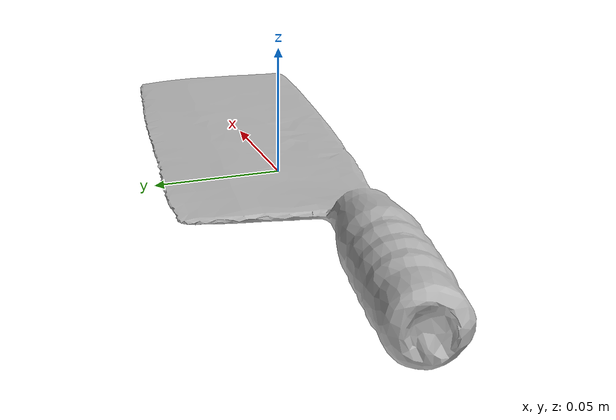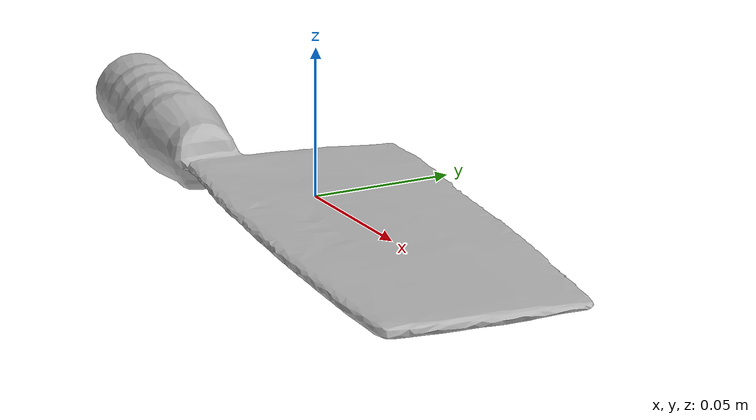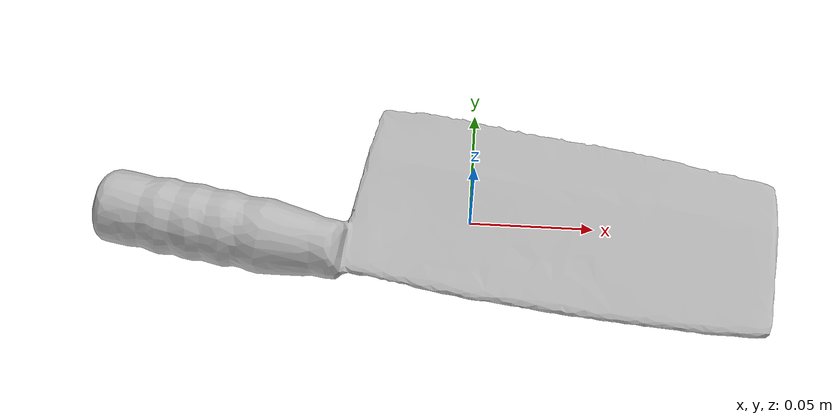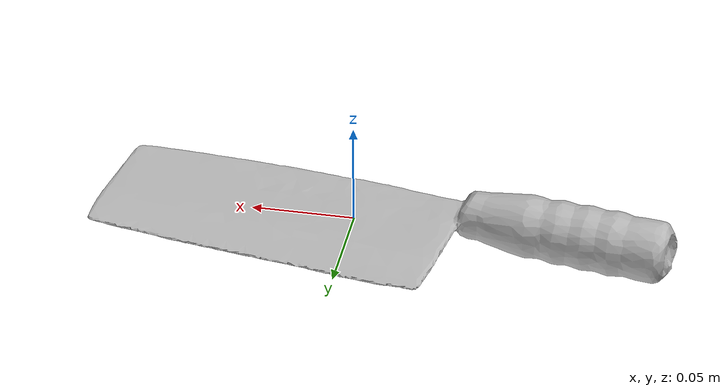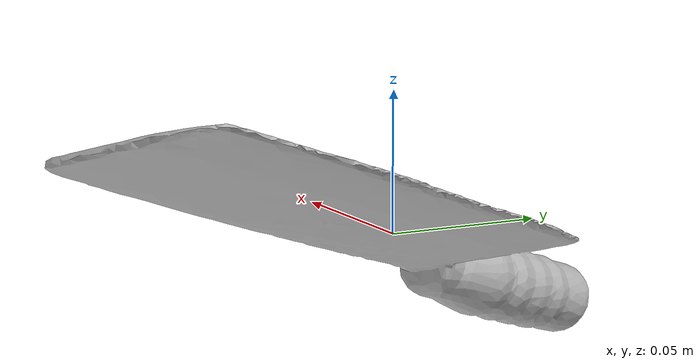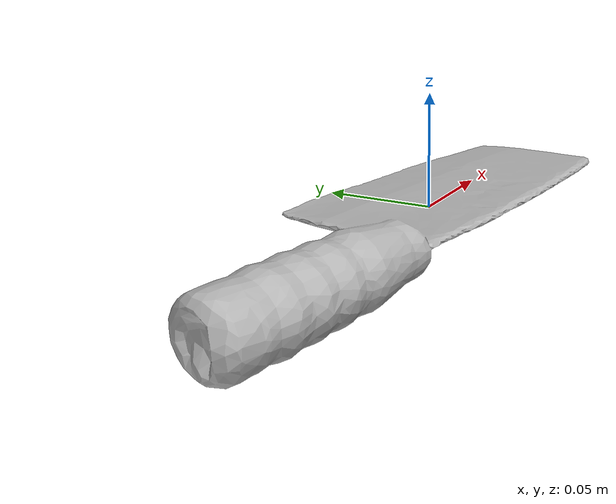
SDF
<?xml version='1.0'?>
<sdf version='1.6'>
	<model name='a_chineseknife'>
		<static>false</static>
		<pose>0 0 0 0 0 0</pose>

		<link name='link'>
			<inertial>
			<mass>0.276</mass>
			<pose>0.00069033 -0.0012369 -0.00043514 0 0 0</pose>
				<inertia>
					<ixx>4.5353e-06</ixx>
					<ixy>0</ixy>
					<ixz>0</ixz>
					<iyy>3.0548e-06</iyy>
					<iyz>0</iyz>
					<izz>8.4999e-07</izz>
				</inertia>
			</inertial>
			<sensor name="tool_contact_sensor" type="contact">
				<always_on>true</always_on>
				<update_rate>30.0</update_rate>
				<contact>
					<collision>collision</collision>
				</contact>
				<plugin name="tool_bumper" filename="libgazebo_ros_bumper.so">
					<bumperTopicName>tool_contact_sensor_state</bumperTopicName>
					<frameName>world</frameName>
				</plugin>
			</sensor>
			<collision name='collision'>
				<geometry>
					<mesh>
						<uri>model://a_chineseknife/a_chineseknife.dae</uri>
					</mesh>
				</geometry>
				<surface>
					<friction>
						<ode>
							<mu>0.2</mu>
							<mu2>0.2</mu2>
						</ode>
					</friction>
				</surface>
			</collision>
			<visual name='visual'>
				<geometry>
					<mesh>
						<uri>model://a_chineseknife/a_chineseknife.dae</uri>
					</mesh>
				</geometry>
			</visual>
		</link>
	</model>
</sdf>
